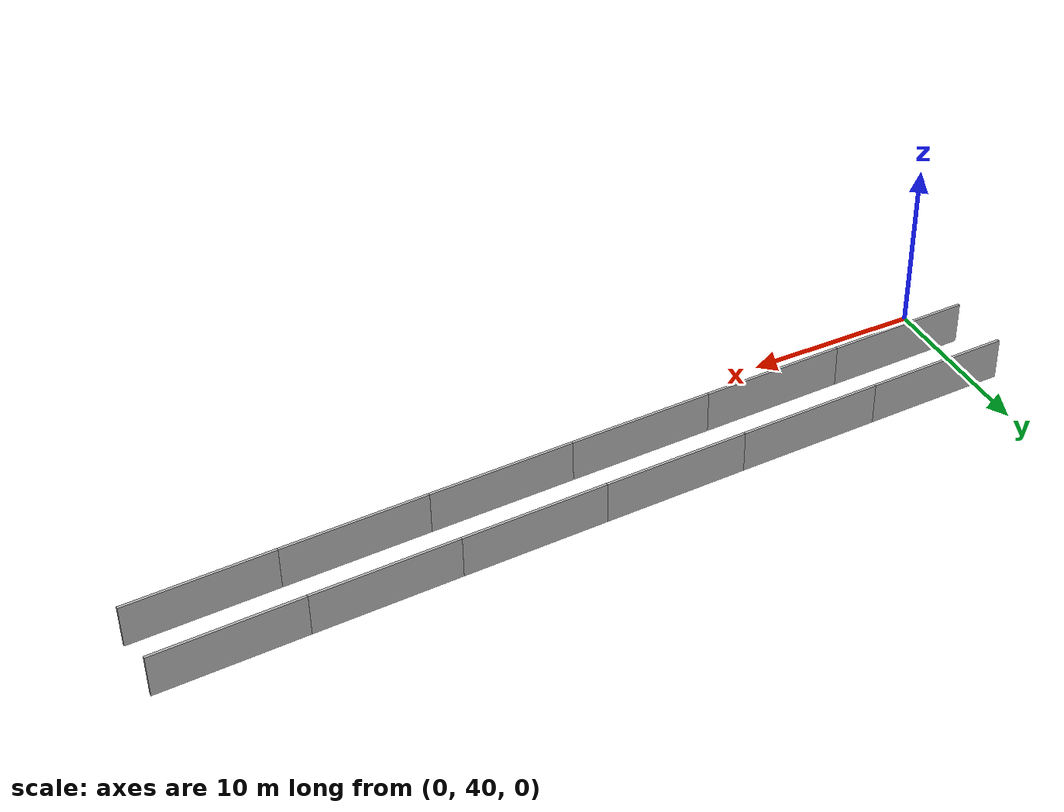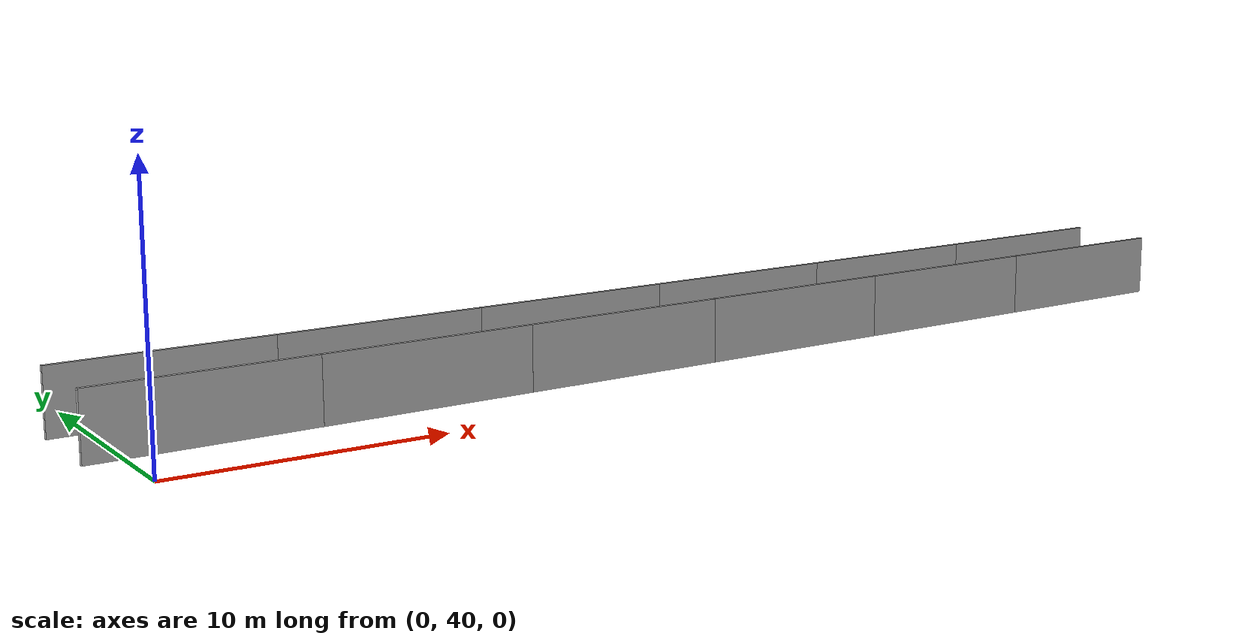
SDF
<?xml version="1.0" ?>
<sdf version="1.6">
  <model name="sps_4601">
    <pose frame="">0 0 0 0 -0 0</pose>
    <static>1</static>
    <self_collide>0</self_collide>
    <allow_auto_disable>0</allow_auto_disable>
    <link name="Wall8938">
      <kinematic>0</kinematic>
      <gravity>1</gravity>
      <self_collide>0</self_collide>
      <collision name="collision">
        <geometry>
          <box>
            <size>8.25191 0.15 2.5</size>
          </box>
        </geometry>
        <pose frame="">0 0 0 0 -0 0</pose>
      </collision>
      <visual name="visual">
        <geometry>
          <box>
            <size>8.25191 0.15 2.5</size>
          </box>
        </geometry>
        <pose frame="">0 0 0 0 -0 0</pose>
        <cast_shadows>1</cast_shadows>
        <transparency>0.0</transparency>
      </visual>
      <pose frame="">2.73046 46.8373 1.25 0 -0 0.0272964</pose>
    </link>
    <link name="Wall8939">
      <kinematic>0</kinematic>
      <gravity>1</gravity>
      <self_collide>0</self_collide>
      <collision name="collision">
        <geometry>
          <box>
            <size>8.2518 0.15 2.5</size>
          </box>
        </geometry>
        <pose frame="">0 0 0 0 -0 0</pose>
      </collision>
      <visual name="visual">
        <geometry>
          <box>
            <size>8.2518 0.15 2.5</size>
          </box>
        </geometry>
        <pose frame="">0 0 0 0 -0 0</pose>
        <cast_shadows>1</cast_shadows>
        <transparency>0.0</transparency>
      </visual>
      <pose frame="">10.979 47.0723 1.25 0 -0 0.0296721</pose>
    </link>
    <link name="Wall8940">
      <kinematic>0</kinematic>
      <gravity>1</gravity>
      <self_collide>0</self_collide>
      <collision name="collision">
        <geometry>
          <box>
            <size>8.25185 0.15 2.5</size>
          </box>
        </geometry>
        <pose frame="">0 0 0 0 -0 0</pose>
      </collision>
      <visual name="visual">
        <geometry>
          <box>
            <size>8.25185 0.15 2.5</size>
          </box>
        </geometry>
        <pose frame="">0 0 0 0 -0 0</pose>
        <cast_shadows>1</cast_shadows>
        <transparency>0.0</transparency>
      </visual>
      <pose frame="">19.2269 47.3268 1.25 0 -0 0.0320177</pose>
    </link>
    <link name="Wall8941">
      <kinematic>0</kinematic>
      <gravity>1</gravity>
      <self_collide>0</self_collide>
      <collision name="collision">
        <geometry>
          <box>
            <size>8.25189 0.15 2.5</size>
          </box>
        </geometry>
        <pose frame="">0 0 0 0 -0 0</pose>
      </collision>
      <visual name="visual">
        <geometry>
          <box>
            <size>8.25189 0.15 2.5</size>
          </box>
        </geometry>
        <pose frame="">0 0 0 0 -0 0</pose>
        <cast_shadows>1</cast_shadows>
        <transparency>0.0</transparency>
      </visual>
      <pose frame="">27.4742 47.6007 1.25 0 -0 0.0343784</pose>
    </link>
    <link name="Wall8942">
      <kinematic>0</kinematic>
      <gravity>1</gravity>
      <self_collide>0</self_collide>
      <collision name="collision">
        <geometry>
          <box>
            <size>8.25154 0.15 2.5</size>
          </box>
        </geometry>
        <pose frame="">0 0 0 0 -0 0</pose>
      </collision>
      <visual name="visual">
        <geometry>
          <box>
            <size>8.25154 0.15 2.5</size>
          </box>
        </geometry>
        <pose frame="">0 0 0 0 -0 0</pose>
        <cast_shadows>1</cast_shadows>
        <transparency>0.0</transparency>
      </visual>
      <pose frame="">35.7207 47.8941 1.25 0 -0 0.0367483</pose>
    </link>
    <link name="Wall8943">
      <kinematic>0</kinematic>
      <gravity>1</gravity>
      <self_collide>0</self_collide>
      <collision name="collision">
        <geometry>
          <box>
            <size>8.25191 0.15 2.5</size>
          </box>
        </geometry>
        <pose frame="">0 0 0 0 -0 0</pose>
      </collision>
      <visual name="visual">
        <geometry>
          <box>
            <size>8.25191 0.15 2.5</size>
          </box>
        </geometry>
        <pose frame="">0 0 0 0 -0 0</pose>
        <cast_shadows>1</cast_shadows>
        <transparency>0.0</transparency>
      </visual>
      <pose frame="">43.9665 48.207 1.25 0 -0 0.0391078</pose>
    </link>
    <link name="Wall9029">
      <kinematic>0</kinematic>
      <gravity>1</gravity>
      <self_collide>0</self_collide>
      <collision name="collision">
        <geometry>
          <box>
            <size>8.26168 0.15 2.5</size>
          </box>
        </geometry>
        <pose frame="">0 0 0 0 -0 0</pose>
      </collision>
      <visual name="visual">
        <geometry>
          <box>
            <size>8.26168 0.15 2.5</size>
          </box>
        </geometry>
        <pose frame="">0 0 0 0 -0 0</pose>
        <cast_shadows>1</cast_shadows>
        <transparency>0.0</transparency>
      </visual>
      <pose frame="">2.76495 43.0803 1.25 0 -0 0.0272642</pose>
    </link>
    <link name="Wall9030">
      <kinematic>0</kinematic>
      <gravity>1</gravity>
      <self_collide>0</self_collide>
      <collision name="collision">
        <geometry>
          <box>
            <size>8.26181 0.15 2.5</size>
          </box>
        </geometry>
        <pose frame="">0 0 0 0 -0 0</pose>
      </collision>
      <visual name="visual">
        <geometry>
          <box>
            <size>8.26181 0.15 2.5</size>
          </box>
        </geometry>
        <pose frame="">0 0 0 0 -0 0</pose>
        <cast_shadows>1</cast_shadows>
        <transparency>0.0</transparency>
      </visual>
      <pose frame="">11.0233 43.3154 1.25 0 -0 0.0296583</pose>
    </link>
    <link name="Wall9031">
      <kinematic>0</kinematic>
      <gravity>1</gravity>
      <self_collide>0</self_collide>
      <collision name="collision">
        <geometry>
          <box>
            <size>8.26168 0.15 2.5</size>
          </box>
        </geometry>
        <pose frame="">0 0 0 0 -0 0</pose>
      </collision>
      <visual name="visual">
        <geometry>
          <box>
            <size>8.26168 0.15 2.5</size>
          </box>
        </geometry>
        <pose frame="">0 0 0 0 -0 0</pose>
        <cast_shadows>1</cast_shadows>
        <transparency>0.0</transparency>
      </visual>
      <pose frame="">19.2812 43.5701 1.25 0 -0 0.0320092</pose>
    </link>
    <link name="Wall9032">
      <kinematic>0</kinematic>
      <gravity>1</gravity>
      <self_collide>0</self_collide>
      <collision name="collision">
        <geometry>
          <box>
            <size>8.26183 0.15 2.5</size>
          </box>
        </geometry>
        <pose frame="">0 0 0 0 -0 0</pose>
      </collision>
      <visual name="visual">
        <geometry>
          <box>
            <size>8.26183 0.15 2.5</size>
          </box>
        </geometry>
        <pose frame="">0 0 0 0 -0 0</pose>
        <cast_shadows>1</cast_shadows>
        <transparency>0.0</transparency>
      </visual>
      <pose frame="">27.5384 43.8442 1.25 0 -0 0.0343591</pose>
    </link>
    <link name="Wall9033">
      <kinematic>0</kinematic>
      <gravity>1</gravity>
      <self_collide>0</self_collide>
      <collision name="collision">
        <geometry>
          <box>
            <size>8.26161 0.15 2.5</size>
          </box>
        </geometry>
        <pose frame="">0 0 0 0 -0 0</pose>
      </collision>
      <visual name="visual">
        <geometry>
          <box>
            <size>8.26161 0.15 2.5</size>
          </box>
        </geometry>
        <pose frame="">0 0 0 0 -0 0</pose>
        <cast_shadows>1</cast_shadows>
        <transparency>0.0</transparency>
      </visual>
      <pose frame="">35.7949 44.1377 1.25 0 -0 0.0367109</pose>
    </link>
    <link name="Wall9034">
      <kinematic>0</kinematic>
      <gravity>1</gravity>
      <self_collide>0</self_collide>
      <collision name="collision">
        <geometry>
          <box>
            <size>8.26169 0.15 2.5</size>
          </box>
        </geometry>
        <pose frame="">0 0 0 0 -0 0</pose>
      </collision>
      <visual name="visual">
        <geometry>
          <box>
            <size>8.26169 0.15 2.5</size>
          </box>
        </geometry>
        <pose frame="">0 0 0 0 -0 0</pose>
        <cast_shadows>1</cast_shadows>
        <transparency>0.0</transparency>
      </visual>
      <pose frame="">44.0506 44.4508 1.25 0 -0 0.0391059</pose>
    </link>
  </model>
</sdf>
